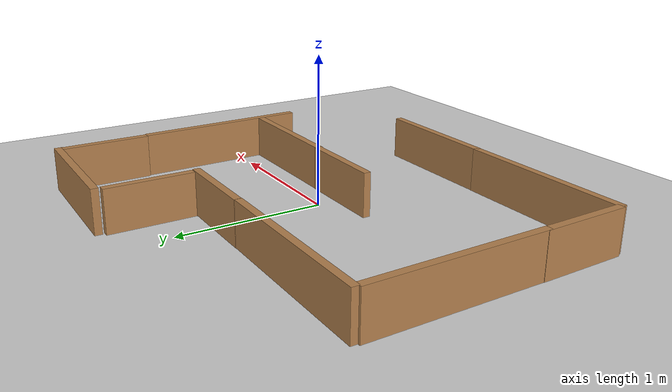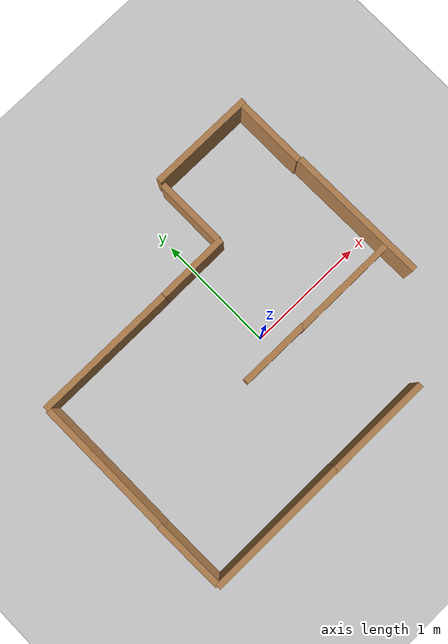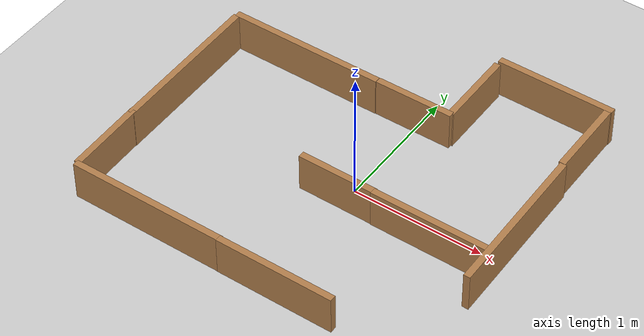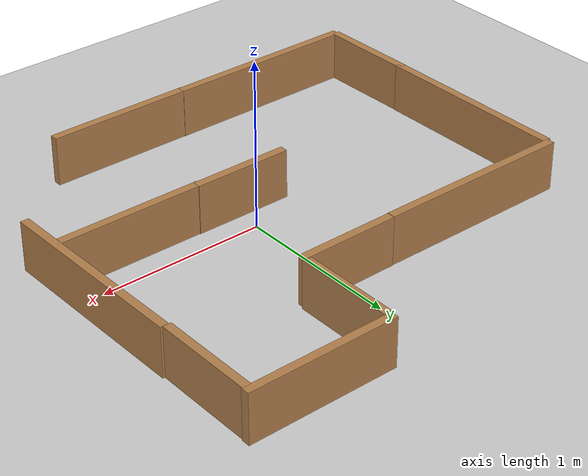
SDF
<sdf version="1.7">
 <world name="default">
  <light name="sun" type="directional">
   <pose>0 0 10 0 -0 0</pose>
   <diffuse>0.8 0.8 0.8 1</diffuse>
   <specular>0.2 0.2 0.2 1</specular>
   <attenuation>
    <range>1000</range>
    <constant>0.9</constant>
    <linear>0.01</linear>
    <quadratic>0.001</quadratic>
   </attenuation>
   <direction>-0.5 0.1 -0.9</direction>
   <spot><inner_angle>0</inner_angle><outer_angle>0</outer_angle><falloff>0</falloff></spot>
  </light>
  <model name="ground_plane">
   <static>1</static>
   <link name="link">
    <collision name="collision">
     <geometry><plane><normal>0 0 1</normal><size>100 100</size></plane></geometry>
     <surface>
      <contact><collide_bitmask>65535</collide_bitmask></contact>
      <friction><ode><mu>100</mu><mu2>50</mu2></ode></friction>
     </surface>
    </collision>
    <visual name="visual">
     <cast_shadows>0</cast_shadows>
     <geometry><plane><normal>0 0 1</normal><size>100 100</size></plane></geometry>
     <material>
      <script><uri>file://media/materials/scripts/gazebo.material</uri><name>Gazebo/Grey</name></script>
     </material>
    </visual>
   </link>
  </model>
  <gravity>0 0 -9.8</gravity>
  <magnetic_field>6e-06 2.3e-05 -4.2e-05</magnetic_field>
  <atmosphere type="adiabatic"/>
  <physics type="ode">
   <max_step_size>0.001</max_step_size>
   <real_time_factor>1</real_time_factor>
   <real_time_update_rate>1000</real_time_update_rate>
  </physics>
  <scene><ambient>0.4 0.4 0.4 1</ambient><background>0.7 0.7 0.7 1</background><shadows>1</shadows></scene>
  <spherical_coordinates>
   <surface_model>EARTH_WGS84</surface_model>
   <latitude_deg>0</latitude_deg>
   <longitude_deg>0</longitude_deg>
   <elevation>0</elevation>
   <heading_deg>0</heading_deg>
  </spherical_coordinates>
  <model name="wall120cm_0">
   <pose>-0.913429 0.719002 0 0 -0 0</pose>
   <link name="Wall_11">
    <collision name="Wall_11_Collision">
     <geometry><box><size>1.2 0.05 0.3</size></box></geometry>
     <pose>0 0 0.15 0 -0 0</pose>
    </collision>
    <visual name="Wall_11_Visual">
     <pose>0 0 0.15 0 -0 0</pose>
     <geometry><box><size>1.2 0.05 0.3</size></box></geometry>
     <material>
      <script><uri>file://media/materials/scripts/gazebo.material</uri><name>Gazebo/Wood</name></script>
      <ambient>1 1 1 1</ambient>
     </material>
     <meta><layer>0</layer></meta>
    </visual>
   </link>
   <static>1</static>
  </model>
  <model name="wall120cm_1">
   <pose>-0.895493 -1.07537 0 0 -0 0</pose>
   <link name="Wall_11">
    <collision name="Wall_11_Collision">
     <geometry><box><size>1.2 0.05 0.3</size></box></geometry>
     <pose>0 0 0.15 0 -0 0</pose>
    </collision>
    <visual name="Wall_11_Visual">
     <pose>0 0 0.15 0 -0 0</pose>
     <geometry><box><size>1.2 0.05 0.3</size></box></geometry>
     <material>
      <script><uri>file://media/materials/scripts/gazebo.material</uri><name>Gazebo/Wood</name></script>
      <ambient>1 1 1 1</ambient>
     </material>
     <meta><layer>0</layer></meta>
    </visual>
   </link>
   <static>1</static>
  </model>
  <model name="wall60cm">
   <pose>-0.011193 0.723339 0 0 0 -3.13532</pose>
   <link name="Wall_4">
    <collision name="Wall_4_Collision">
     <geometry><box><size>0.6 0.05 0.3</size></box></geometry>
     <pose>0 0 0.15 0 -0 0</pose>
    </collision>
    <visual name="Wall_4_Visual">
     <pose>0 0 0.15 0 -0 0</pose>
     <geometry><box><size>0.6 0.05 0.3</size></box></geometry>
     <material>
      <script><uri>file://media/materials/scripts/gazebo.material</uri><name>Gazebo/Wood</name></script>
      <ambient>1 1 1 1</ambient>
     </material>
     <meta><layer>0</layer></meta>
    </visual>
   </link>
   <static>1</static>
  </model>
  <model name="wall60cm_0">
   <pose>1.13471 1.0547 0 0 0 -1.56721</pose>
   <link name="Wall_4">
    <collision name="Wall_4_Collision">
     <geometry><box><size>0.6 0.05 0.3</size></box></geometry>
     <pose>0 0 0.15 0 -0 0</pose>
    </collision>
    <visual name="Wall_4_Visual">
     <pose>0 0 0.15 0 -0 0</pose>
     <geometry><box><size>0.6 0.05 0.3</size></box></geometry>
     <material>
      <script><uri>file://media/materials/scripts/gazebo.material</uri><name>Gazebo/Wood</name></script>
      <ambient>1 1 1 1</ambient>
     </material>
     <meta><layer>0</layer></meta>
    </visual>
   </link>
   <static>1</static>
  </model>
  <model name="wall120cm">
   <pose>1.15584 0.153174 0 0 0 -1.55794</pose>
   <link name="Wall_11">
    <collision name="Wall_11_Collision">
     <geometry><box><size>1.2 0.05 0.3</size></box></geometry>
     <pose>0 0 0.15 0 -0 0</pose>
    </collision>
    <visual name="Wall_11_Visual">
     <pose>0 0 0.15 0 -0 0</pose>
     <geometry><box><size>1.2 0.05 0.3</size></box></geometry>
     <material>
      <script><uri>file://media/materials/scripts/gazebo.material</uri><name>Gazebo/Wood</name></script>
      <ambient>1 1 1 1</ambient>
     </material>
     <meta><layer>0</layer></meta>
    </visual>
   </link>
   <static>1</static>
  </model>
  <model name="wall120cm_2">
   <pose>-1.49892 0.100941 0 0 0 -1.563</pose>
   <link name="Wall_11">
    <collision name="Wall_11_Collision">
     <geometry><box><size>1.2 0.05 0.3</size></box></geometry>
     <pose>0 0 0.15 0 -0 0</pose>
    </collision>
    <visual name="Wall_11_Visual">
     <pose>0 0 0.15 0 -0 0</pose>
     <geometry><box><size>1.2 0.05 0.3</size></box></geometry>
     <material>
      <script><uri>file://media/materials/scripts/gazebo.material</uri><name>Gazebo/Wood</name></script>
      <ambient>1 1 1 1</ambient>
     </material>
     <meta><layer>0</layer></meta>
    </visual>
   </link>
   <static>1</static>
  </model>
  <model name="wall60cm_1">
   <pose>-0.023081 -0.162677 0 0 -0 3.1391</pose>
   <link name="Wall_4">
    <collision name="Wall_4_Collision">
     <geometry><box><size>0.6 0.05 0.3</size></box></geometry>
     <pose>0 0 0.15 0 -0 0</pose>
    </collision>
    <visual name="Wall_4_Visual">
     <pose>0 0 0.15 0 -0 0</pose>
     <geometry><box><size>0.6 0.05 0.3</size></box></geometry>
     <material>
      <script><uri>file://media/materials/scripts/gazebo.material</uri><name>Gazebo/Wood</name></script>
      <ambient>1 1 1 1</ambient>
     </material>
     <meta><layer>0</layer></meta>
    </visual>
   </link>
   <static>1</static>
  </model>
  <model name="wall60cm_2">
   <pose>-1.49171 -0.769121 0 0 0 -1.55219</pose>
   <link name="Wall_4">
    <collision name="Wall_4_Collision">
     <geometry><box><size>0.6 0.05 0.3</size></box></geometry>
     <pose>0 0 0.15 0 -0 0</pose>
    </collision>
    <visual name="Wall_4_Visual">
     <pose>0 0 0.15 0 -0 0</pose>
     <geometry><box><size>0.6 0.05 0.3</size></box></geometry>
     <material>
      <script><uri>file://media/materials/scripts/gazebo.material</uri><name>Gazebo/Wood</name></script>
      <ambient>1 1 1 1</ambient>
     </material>
     <meta><layer>0</layer></meta>
    </visual>
   </link>
   <static>1</static>
  </model>
  <model name="wall90cm">
   <pose>0.713687 1.3752 0 0 -0 0</pose>
   <link name="Wall_6">
    <collision name="Wall_6_Collision">
     <geometry><box><size>0.9 0.05 0.3</size></box></geometry>
     <pose>0 0 0.15 0 -0 0</pose>
    </collision>
    <visual name="Wall_6_Visual">
     <pose>0 0 0.15 0 -0 0</pose>
     <geometry><box><size>0.9 0.05 0.3</size></box></geometry>
     <material>
      <script><uri>file://media/materials/scripts/gazebo.material</uri><name>Gazebo/Wood</name></script>
      <ambient>1 1 1 1</ambient>
     </material>
     <meta><layer>0</layer></meta>
    </visual>
   </link>
   <static>1</static>
  </model>
  <model name="wall90cm_0">
   <pose>0.133541 -1.07735 0 0 -0 0</pose>
   <link name="Wall_6">
    <collision name="Wall_6_Collision">
     <geometry><box><size>0.9 0.05 0.3</size></box></geometry>
     <pose>0 0 0.15 0 -0 0</pose>
    </collision>
    <visual name="Wall_6_Visual">
     <pose>0 0 0.15 0 -0 0</pose>
     <geometry><box><size>0.9 0.05 0.3</size></box></geometry>
     <material>
      <script><uri>file://media/materials/scripts/gazebo.material</uri><name>Gazebo/Wood</name></script>
      <ambient>1 1 1 1</ambient>
     </material>
     <meta><layer>0</layer></meta>
    </visual>
   </link>
   <static>1</static>
  </model>
  <model name="wall60cm_3">
   <pose>0.271224 1.03436 -0.007184 0 0 -1.56743</pose>
   <link name="Wall_4">
    <collision name="Wall_4_Collision">
     <geometry><box><size>0.6 0.05 0.3</size></box></geometry>
     <pose>0 0 0.15 0 -0 0</pose>
    </collision>
    <visual name="Wall_4_Visual">
     <pose>0 0 0.15 0 -0 0</pose>
     <geometry><box><size>0.6 0.05 0.3</size></box></geometry>
     <material>
      <script><uri>file://media/materials/scripts/gazebo.material</uri><name>Gazebo/Wood</name></script>
      <ambient>1 1 1 1</ambient>
     </material>
     <meta><layer>0</layer></meta>
    </visual>
   </link>
   <static>1</static>
  </model>
  <model name="wall90cm_1">
   <pose>0.704979 -0.167604 0 0 -0 0</pose>
   <link name="Wall_6">
    <collision name="Wall_6_Collision">
     <geometry><box><size>0.9 0.05 0.3</size></box></geometry>
     <pose>0 0 0.15 0 -0 0</pose>
    </collision>
    <visual name="Wall_6_Visual">
     <pose>0 0 0.15 0 -0 0</pose>
     <geometry><box><size>0.9 0.05 0.3</size></box></geometry>
     <material>
      <script><uri>file://media/materials/scripts/gazebo.material</uri><name>Gazebo/Wood</name></script>
      <ambient>1 1 1 1</ambient>
     </material>
     <meta><layer>0</layer></meta>
    </visual>
   </link>
   <static>1</static>
  </model>
 </world>
</sdf>
